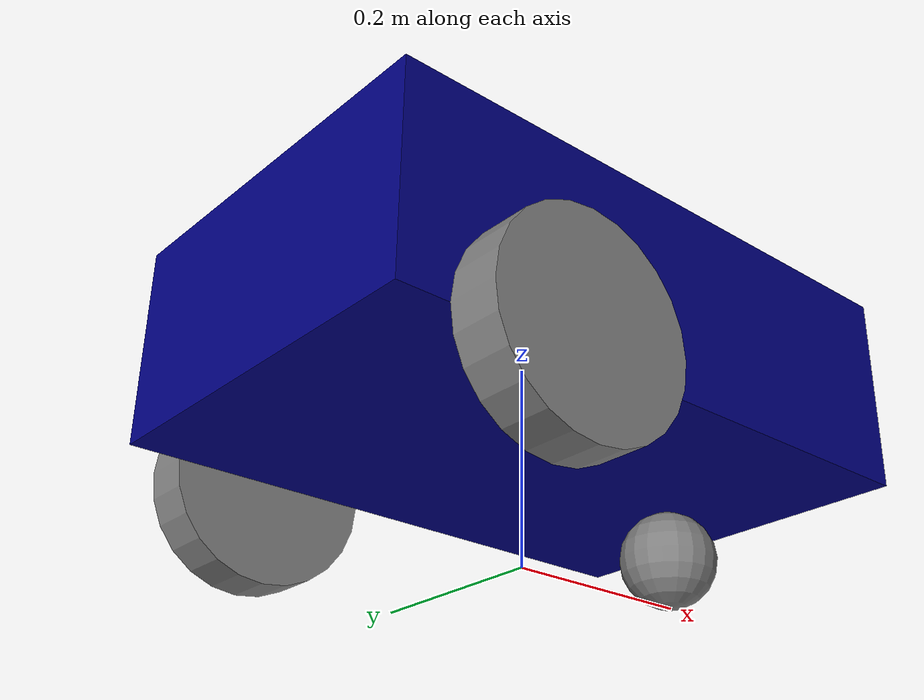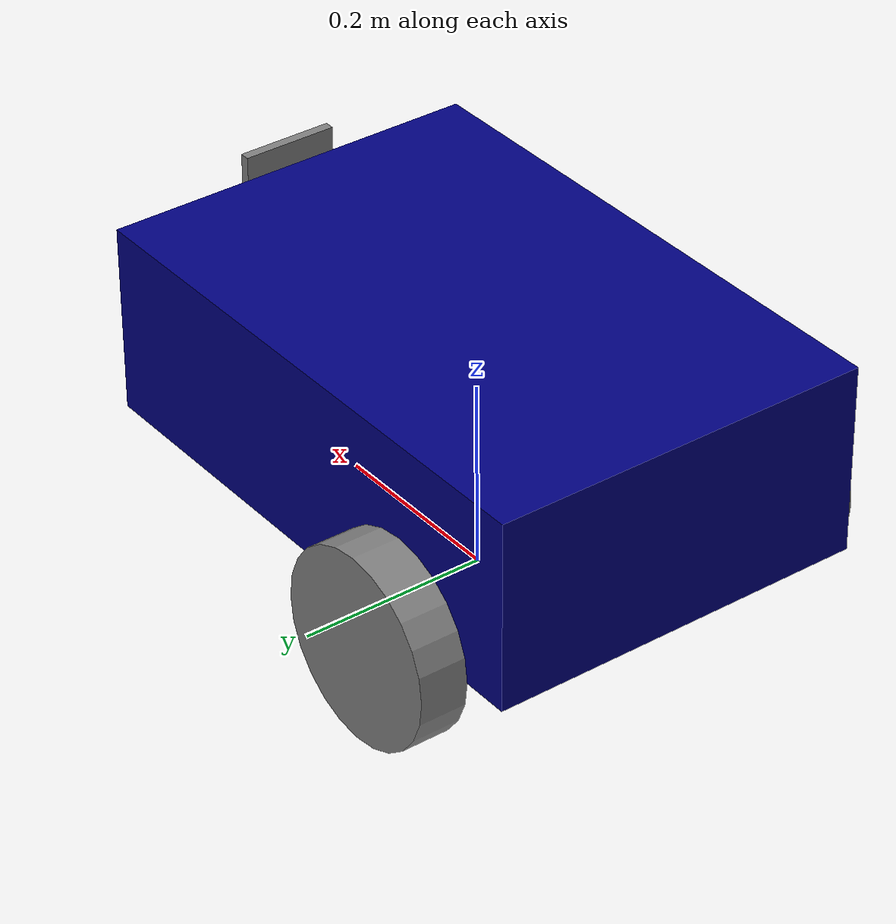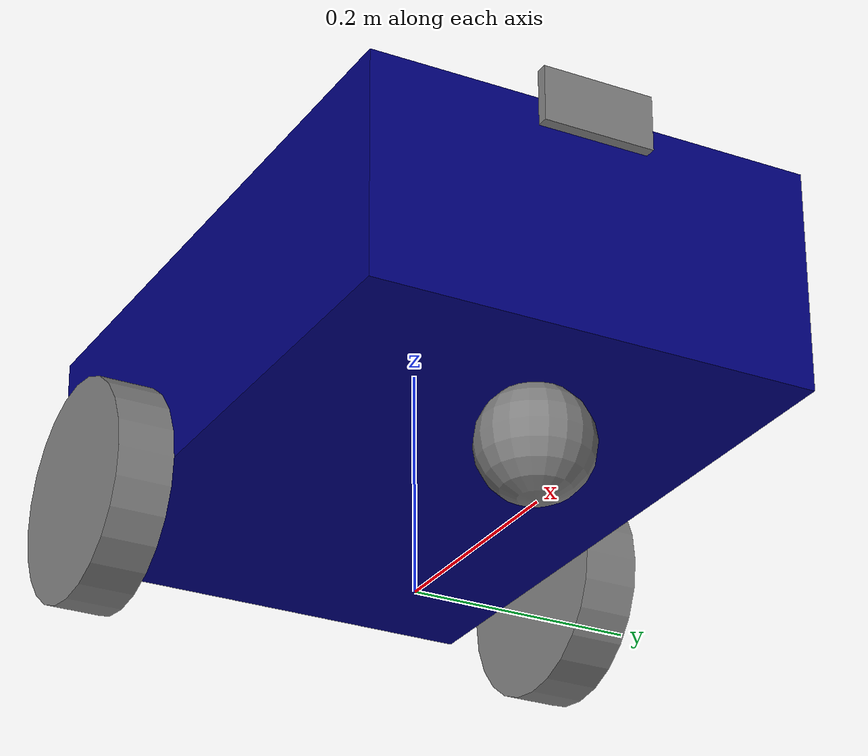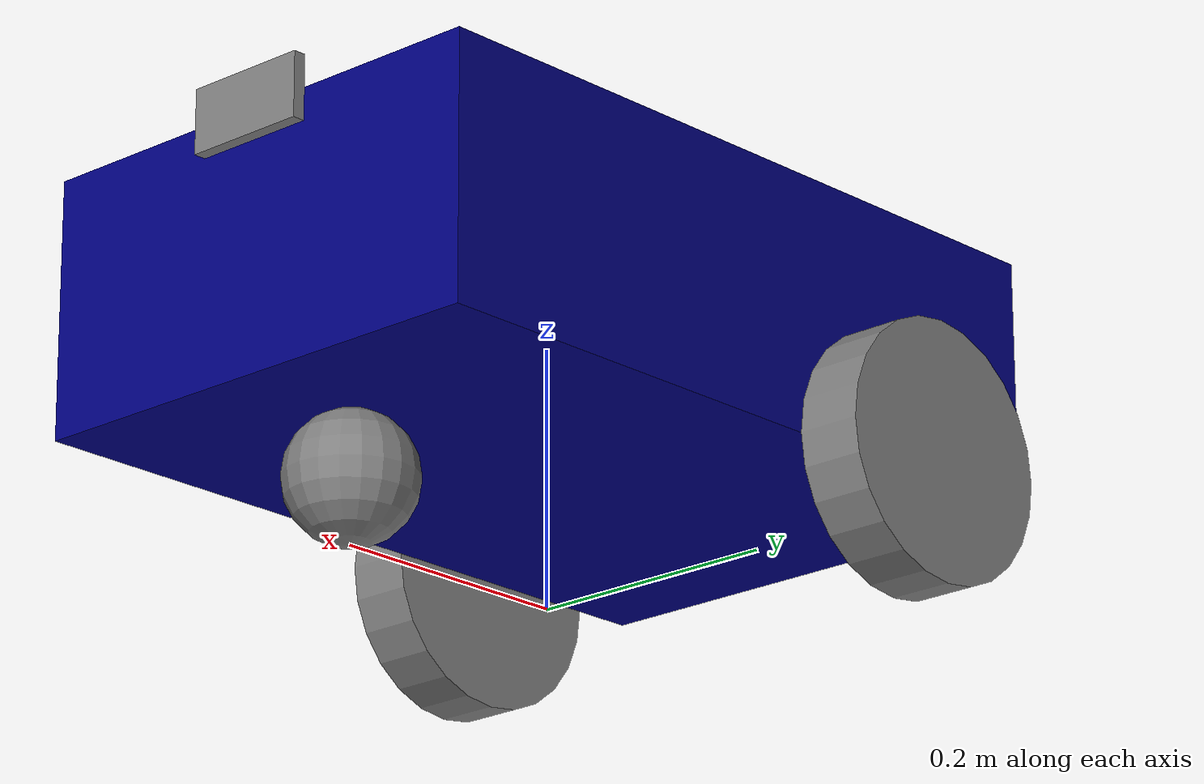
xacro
<?xml version="1.0"?>
<robot name="my_robot" xmlns:xacro="http://www.ros.org/wiki/xacro" >

    <xacro:include filename="common_properties.urdf.xacro" />
    <xacro:include filename="mobile_base.urdf.xacro" />
    <xacro:include filename="mobile_base_gazebo.urdf.xacro" />
    <xacro:include filename="camera.urdf.xacro" />

</robot>

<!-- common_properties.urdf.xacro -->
<robot xmlns:xacro="http://www.ros.org/wiki/xacro" >

    <material name="green">
        <color rgba="0 0.5 0 1" />
    </material>

    <material name="blue">
        <color rgba="0 0 0.5 1" />
    </material>

    <material name="grey">
        <color rgba="0.5 0.5 0.5 1" />
    </material>

    <xacro:macro name="box_inertia" params="m l w h xyz rpy" >
        <inertial>
            <origin xyz="${xyz}" rpy="${rpy}" />
            <mass value="${m}" />
            <inertia ixx="${(m/12) * (h*h + l*l)}" ixy="0" ixz="0"
                     iyy="${(m/12) * (w*w + l*l)}" iyz="0"
                     izz="${(m/12) * (w*w + h*h)}" />
        </inertial>
    </xacro:macro>

    <xacro:macro name="sphere_inertia" params="m r xyz rpy" >
        <inertial>
            <origin xyz="${xyz}" rpy="${rpy}" />
            <mass value="${m}" />
            <inertia ixx="${(2/5) * m * r * r}" ixy="0" ixz="0"
                     iyy="${(2/5) * m * r * r}" iyz="0"
                     izz="${(2/5) * m * r * r}" />
        </inertial>
    </xacro:macro>

    <xacro:macro name="cylinder_inertia" params="m r h xyz rpy" >
        <inertial>
            <origin xyz="${xyz}" rpy="${rpy}" />
            <mass value="${m}" />
            <inertia ixx="${(m/12) * ((3 * r * r) + (h * h))}" ixy="0" ixz="0"
                     iyy="${(m/12) * ((3 * r * r) + (h * h))}" iyz="0"
                     izz="${(m/2) * r * r}" />
        </inertial>
    </xacro:macro>

</robot>

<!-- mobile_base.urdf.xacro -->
<robot xmlns:xacro="http://www.ros.org/wiki/xacro" >

    <xacro:property name="base_length" value="0.6" />
    <xacro:property name="base_width" value="0.4" />
    <xacro:property name="base_height" value="0.2" />
    <xacro:property name="wheel_length" value="0.05" />
    <xacro:property name="wheel_radius" value="0.1" />
    <xacro:property name="caster_wheel_radius" value="${wheel_radius / 2}" />
    <xacro:property name="base_joint_offset" value="${wheel_radius}" />

    <xacro:macro name="create_wheel_link" params="prefix" >
        <link name="${prefix}_wheel_link">
            <visual>
                <geometry>
                    <cylinder radius="${wheel_radius}" length="${wheel_length}" />
                </geometry>
                <origin xyz="0 0 0" rpy="${pi / 2} 0 0" />
                <material name="grey" />
            </visual>
            <collision>
                <geometry>
                    <cylinder radius="${wheel_radius}" length="${wheel_length}" />
                </geometry>
                <origin xyz="0 0 0" rpy="${pi / 2} 0 0" />
            </collision>
            <xacro:cylinder_inertia m="1.0" r="${2 * caster_wheel_radius}" h="${2 * wheel_length}"
                               xyz="0 0 0" rpy="${pi / 2} 0 0" />
        </link>
    </xacro:macro>

    <link name="base_footprint" />

    <link name="base_link">
        <visual>
            <geometry>
                <box size="${base_length} ${base_width} ${base_height}" />
            </geometry>
            <origin xyz="0 0 ${(base_height / 2)}" rpy="0 0 0" />
            <material name="blue" />
        </visual>
        <collision>
            <geometry>
                <box size="${base_length} ${base_width} ${base_height}" />
            </geometry>
            <origin xyz="0 0 ${(base_height / 2)}" rpy="0 0 0" />
        </collision>
        <xacro:box_inertia m="5.0" l="${2 * base_length}" w="${2 * base_width}" h="${2 * base_height}"
                           xyz="0 0 ${(base_height / 2)}" rpy="0 0 0" />
    </link>

    <xacro:create_wheel_link prefix="right" />

    <xacro:create_wheel_link prefix="left" />

    <link name="caster_wheel_link">
        <visual>
            <geometry>
                <sphere radius="${caster_wheel_radius}" />
            </geometry>
            <origin xyz="0 0 0" rpy="0 0 0" />
            <material name="grey" />
        </visual>
        <collision>
            <geometry>
                <sphere radius="${caster_wheel_radius}" />
            </geometry>
            <origin xyz="0 0 0" rpy="0 0 0" />
        </collision>
        <xacro:sphere_inertia m="0.5" r="${2 * caster_wheel_radius}"
                           xyz="0 0 0" rpy="0 0 0" />
    </link>

    <joint name="base_joint" type="fixed" >
        <parent link="base_footprint" />
        <child link="base_link" />
        <origin xyz="0 0 ${wheel_radius}" rpy="0 0 0" />
    </joint>

    <joint name="base_right_wheel_joint" type="continuous" >
        <parent link="base_link" />
        <child link="right_wheel_link" />
        <origin xyz="${-base_length / 4} ${-((base_width / 2) + (wheel_length / 2))} 0" rpy="0 0 0" />
        <axis xyz="0 1 0" />
    </joint>

    <joint name="base_left_wheel_joint" type="continuous" >
        <parent link="base_link" />
        <child link="left_wheel_link" />
        <origin xyz="${-base_length / 4} ${((base_width / 2) + (wheel_length / 2))} 0" rpy="0 0 0" />
        <axis xyz="0 1 0" />
    </joint>

    <joint name="base_caster_wheel_joint" type="fixed" >
        <parent link="base_link" />
        <child link="caster_wheel_link" />
        <origin xyz="${base_length / 3} 0 ${-(base_joint_offset - caster_wheel_radius)}" rpy="0 0 0" />
    </joint>

</robot>

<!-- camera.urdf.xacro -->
<robot xmlns:xacro="http://www.ros.org/wiki/xacro" >

    <xacro:property name="camera_length" value="0.01" />
    <xacro:property name="camera_width" value="0.1" />
    <xacro:property name="camera_height" value="0.05" />

    <link name="camera_link">
        <visual>
            <geometry>
                <box size="${camera_length} ${camera_width} ${camera_height}" />
            </geometry>
            <origin xyz="0 0 0" rpy="0 0 0" />
            <material name="grey" />
        </visual>
        <collision>
            <geometry>
                <box size="${camera_length} ${camera_width} ${camera_height}" />
            </geometry>
            <origin xyz="0 0 0" rpy="0 0 0" />
        </collision>
        <xacro:box_inertia m="0.1" l="${camera_length}" w="${camera_width}" h="${camera_height}"
                           xyz="0 0 0" rpy="0 0 0" />
    </link>

    <joint name="base_camera_joint" type="fixed" >
        <parent link="base_link" />
        <child link="camera_link" />
        <origin xyz="${(base_length + camera_length)/2} 0 ${base_height}" rpy="0 0 0" />
    </joint>

    <gazebo reference="camera_link">
        <material>Gazebo/Red</material>
        <sensor name="camera_sensor" type="camera">
            <pose>0 0 0 0 0 0</pose>
            <visualize>true</visualize>
            <update_rate>10.0</update_rate>

            <plugin name="camera_controller" filename="libgazebo_ros_camera.so">
                <!-- Set TF frame name. If empty, defaults to link name -->
                <frame_name>camera_link</frame_name>
            </plugin>
        </sensor>
    </gazebo>

</robot>
